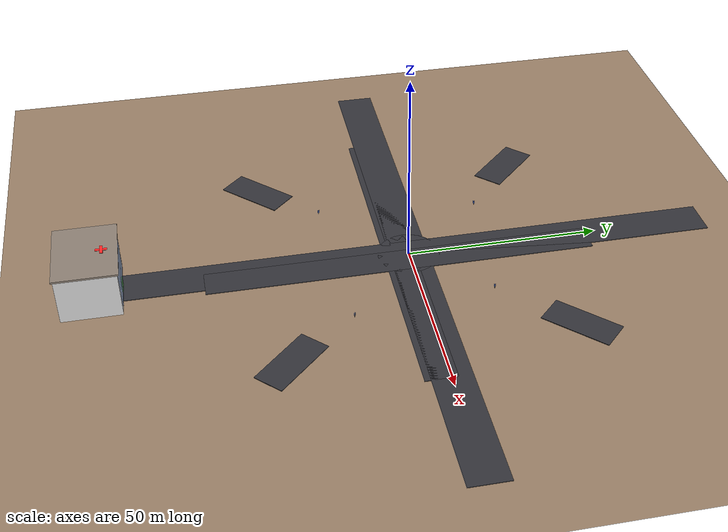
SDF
<sdf version="1.9">
 <world name="dodoma_light">
  <physics type="ode">
   <max_step_size>0.004</max_step_size>
   <real_time_factor>1.0</real_time_factor>
   <real_time_update_rate>250</real_time_update_rate>
   <gravity>0 0 -9.81</gravity>
  </physics>
  <plugin filename="gz-sim-sensors-system" name="gz::sim::systems::Sensors">
   <render_engine>ogre2</render_engine>
  </plugin>
  <plugin filename="gz-sim-imu-system" name="gz::sim::systems::Imu"/>
  <spherical_coordinates>
   <surface_model>EARTH_WGS84</surface_model>
   <world_frame_orientation>ENU</world_frame_orientation>
   <latitude_deg>-6.1629</latitude_deg>
   <longitude_deg>35.7516</longitude_deg>
   <elevation>1120</elevation>
   <heading_deg>0</heading_deg>
  </spherical_coordinates>
  <scene>
   <grid>false</grid>
   <sky><time>12.0</time><clouds><speed>3</speed><humidity>0.4</humidity></clouds></sky>
   <ambient>0.5 0.5 0.5 1</ambient>
   <background>0.45 0.55 0.75 1</background>
   <shadows>true</shadows>
  </scene>
  <light type="directional" name="sun">
   <pose>0 0 100 0 0 0</pose>
   <diffuse>1 0.95 0.9 1</diffuse>
   <direction>-0.3 0.1 -0.95</direction>
  </light>
  <model name="dodoma_ground">
   <static>true</static>
   <link name="ground">
    <collision name="collision">
     <geometry><plane><normal>0 0 1</normal><size>500 500</size></plane></geometry>
    </collision>
    <visual name="soil">
     <geometry><plane><normal>0 0 1</normal><size>500 500</size></plane></geometry>
     <material><ambient>0.55 0.45 0.35 1</ambient><diffuse>0.6 0.5 0.4 1</diffuse></material>
    </visual>
   </link>
  </model>
  <model name="india_road">
   <pose>0 0 0.12 0 0 0</pose>
   <static>true</static>
   <link name="road">
    <collision name="collision"><geometry><box><size>160 10 0.2</size></box></geometry></collision>
    <visual name="tarmac">
     <geometry><box><size>160 10 0.2</size></box></geometry>
     <material><ambient>0.18 0.18 0.2 1</ambient><diffuse>0.2 0.2 0.22 1</diffuse></material>
    </visual>
   </link>
  </model>
  <model name="uhuru_street">
   <pose>0 0 0.12 0 0 0</pose>
   <static>true</static>
   <link name="road">
    <collision name="collision"><geometry><box><size>10 160 0.2</size></box></geometry></collision>
    <visual name="tarmac">
     <geometry><box><size>10 160 0.2</size></box></geometry>
     <material><ambient>0.18 0.18 0.2 1</ambient><diffuse>0.2 0.2 0.22 1</diffuse></material>
    </visual>
   </link>
  </model>
  <model name="jamhuri_street">
   <pose>-2.5 -2.5 0.12 0 0 0</pose>
   <static>true</static>
   <link name="road">
    <collision name="collision"><geometry><box><size>100 8 0.2</size></box></geometry></collision>
    <visual name="tarmac">
     <geometry><box><size>100 8 0.2</size></box></geometry>
     <material><ambient>0.18 0.18 0.2 1</ambient><diffuse>0.2 0.2 0.22 1</diffuse></material>
    </visual>
   </link>
  </model>
  <model name="azikiwe_street">
   <pose>2.5 -2.5 0.12 0 0 0</pose>
   <static>true</static>
   <link name="road">
    <collision name="collision"><geometry><box><size>8 100 0.2</size></box></geometry></collision>
    <visual name="tarmac">
     <geometry><box><size>8 100 0.2</size></box></geometry>
     <material><ambient>0.18 0.18 0.2 1</ambient><diffuse>0.2 0.2 0.22 1</diffuse></material>
    </visual>
   </link>
  </model>
  <model name="connector_1">
   <pose>35 35 0.12 0 0 0.785</pose>
   <static>true</static>
   <link name="road">
    <collision name="collision"><geometry><box><size>18 8 0.2</size></box></geometry></collision>
    <visual name="tarmac">
     <geometry><box><size>18 8 0.2</size></box></geometry>
     <material><ambient>0.18 0.18 0.2 1</ambient><diffuse>0.2 0.2 0.22 1</diffuse></material>
    </visual>
   </link>
  </model>
  <model name="connector_2">
   <pose>-35 35 0.12 0 0 -0.785</pose>
   <static>true</static>
   <link name="road">
    <collision name="collision"><geometry><box><size>18 8 0.2</size></box></geometry></collision>
    <visual name="tarmac">
     <geometry><box><size>18 8 0.2</size></box></geometry>
     <material><ambient>0.18 0.18 0.2 1</ambient><diffuse>0.2 0.2 0.22 1</diffuse></material>
    </visual>
   </link>
  </model>
  <model name="connector_3">
   <pose>35 -35 0.12 0 0 -0.785</pose>
   <static>true</static>
   <link name="road">
    <collision name="collision"><geometry><box><size>18 8 0.2</size></box></geometry></collision>
    <visual name="tarmac">
     <geometry><box><size>18 8 0.2</size></box></geometry>
     <material><ambient>0.18 0.18 0.2 1</ambient><diffuse>0.2 0.2 0.22 1</diffuse></material>
    </visual>
   </link>
  </model>
  <model name="connector_4">
   <pose>-35 -35 0.12 0 0 0.785</pose>
   <static>true</static>
   <link name="road">
    <collision name="collision"><geometry><box><size>18 8 0.2</size></box></geometry></collision>
    <visual name="tarmac">
     <geometry><box><size>18 8 0.2</size></box></geometry>
     <material><ambient>0.18 0.18 0.2 1</ambient><diffuse>0.2 0.2 0.22 1</diffuse></material>
    </visual>
   </link>
  </model>
  <model name="central_roundabout">
   <pose>0 0 0.12 0 0 0</pose>
   <static>true</static>
   <link name="surface">
    <collision name="collision">
     <geometry><cylinder><radius>8</radius><length>0.2</length></cylinder></geometry>
    </collision>
    <visual name="tarmac">
     <geometry><cylinder><radius>8</radius><length>0.2</length></cylinder></geometry>
     <material><ambient>0.18 0.18 0.2 1</ambient><diffuse>0.2 0.2 0.22 1</diffuse></material>
    </visual>
   </link>
  </model>
  <model name="central_hospital">
   <pose>0 -80 0 0 0 0</pose>
   <static>true</static>
   <include><uri>hospital</uri></include>
  </model>
  <model name="person_1">
   <pose>18 18 0 0 0 0</pose>
   <static>true</static>
   <include><uri>person</uri></include>
  </model>
  <model name="person_2">
   <pose>22 -18 0 0 0 0</pose>
   <static>true</static>
   <include><uri>person</uri></include>
  </model>
  <model name="person_3">
   <pose>-18 22 0 0 0 0</pose>
   <static>true</static>
   <include><uri>person</uri></include>
  </model>
  <model name="person_4">
   <pose>-22 -20 0 0 0 0</pose>
   <static>true</static>
   <include><uri>person</uri></include>
  </model>
 </world>
</sdf>

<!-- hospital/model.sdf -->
<sdf version="1.9">
  <model name="hospital">
    <static>true</static>
    <link name="main">
      <collision name="col">
        <pose>0 0 6 0 0 0</pose>
        <geometry><box><size>20 15 12</size></box></geometry>
      </collision>
      <!-- Main building -->
      <visual name="walls">
        <pose>0 0 6 0 0 0</pose>
        <geometry><box><size>20 15 12</size></box></geometry>
        <material>
          <ambient>0.85 0.85 0.85 1</ambient>
          <diffuse>0.9 0.9 0.9 1</diffuse>
          <specular>0.1 0.1 0.1 1</specular>
        </material>
      </visual>
      <!-- Windows front row 1 -->
      <visual name="w_front_1">
        <pose>0 7.6 8 0 0 0</pose>
        <geometry><box><size>16 0.2 4</size></box></geometry>
        <material>
          <ambient>0.4 0.5 0.7 0.6</ambient>
          <diffuse>0.45 0.55 0.75 0.6</diffuse>
          <specular>0.3 0.3 0.3 1</specular>
        </material>
      </visual>
      <!-- Windows front row 2 -->
      <visual name="w_front_2">
        <pose>0 7.6 3 0 0 0</pose>
        <geometry><box><size>16 0.2 4</size></box></geometry>
        <material>
          <ambient>0.4 0.5 0.7 0.6</ambient>
          <diffuse>0.45 0.55 0.75 0.6</diffuse>
          <specular>0.3 0.3 0.3 1</specular>
        </material>
      </visual>
      <!-- Roof -->
      <visual name="roof">
        <pose>0 0 12.3 0 0 0</pose>
        <geometry><box><size>20.8 15.8 0.5</size></box></geometry>
        <material>
          <ambient>0.5 0.45 0.4 1</ambient>
          <diffuse>0.55 0.5 0.45 1</diffuse>
        </material>
      </visual>
      <!-- Red cross on roof -->
      <visual name="cross_h">
        <pose>0 4 12.8 0 0 0</pose>
        <geometry><box><size>3 0.8 0.1</size></box></geometry>
        <material>
          <ambient>0.9 0.1 0.1 1</ambient>
          <diffuse>1 0.15 0.15 1</diffuse>
          <emissive>0.3 0.05 0.05 1</emissive>
        </material>
      </visual>
      <visual name="cross_v">
        <pose>0 4 12.8 0 0 0</pose>
        <geometry><box><size>0.8 3 0.1</size></box></geometry>
        <material>
          <ambient>0.9 0.1 0.1 1</ambient>
          <diffuse>1 0.15 0.15 1</diffuse>
          <emissive>0.3 0.05 0.05 1</emissive>
        </material>
      </visual>
      <!-- Entrance -->
      <visual name="entrance">
        <pose>0 7.6 1.5 0 0 0</pose>
        <geometry><box><size>3 0.3 2.5</size></box></geometry>
        <material>
          <ambient>0.3 0.6 0.3 1</ambient>
          <diffuse>0.35 0.65 0.35 1</diffuse>
        </material>
      </visual>
    </link>
  </model>
</sdf>

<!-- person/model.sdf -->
<sdf version="1.9">
  <model name="person">
    <static>true</static>
    <!-- Body/torso -->
    <link name="torso">
      <visual name="body">
        <pose>0 0 0.85 0 0 0</pose>
        <geometry><cylinder><radius>0.2</radius><length>0.7</length></cylinder></geometry>
        <material>
          <ambient>0.2 0.3 0.6 1</ambient>
          <diffuse>0.25 0.35 0.65 1</diffuse>
        </material>
      </visual>
      <!-- Head -->
      <visual name="head">
        <pose>0 0 1.25 0 0 0</pose>
        <geometry><sphere><radius>0.15</radius></sphere></geometry>
        <material>
          <ambient>0.85 0.75 0.65 1</ambient>
          <diffuse>0.9 0.8 0.7 1</diffuse>
        </material>
      </visual>
      <!-- Left leg -->
      <visual name="leg_l">
        <pose>-0.08 0 0.4 0 0 0</pose>
        <geometry><cylinder><radius>0.06</radius><length>0.7</length></cylinder></geometry>
        <material>
          <ambient>0.15 0.15 0.15 1</ambient>
          <diffuse>0.2 0.2 0.2 1</diffuse>
        </material>
      </visual>
      <!-- Right leg -->
      <visual name="leg_r">
        <pose>0.08 0 0.4 0 0 0</pose>
        <geometry><cylinder><radius>0.06</radius><length>0.7</length></cylinder></geometry>
        <material>
          <ambient>0.15 0.15 0.15 1</ambient>
          <diffuse>0.2 0.2 0.2 1</diffuse>
        </material>
      </visual>
      <!-- Left arm -->
      <visual name="arm_l">
        <pose>-0.25 0 0.9 0 0 0.3</pose>
        <geometry><cylinder><radius>0.04</radius><length>0.5</length></cylinder></geometry>
        <material>
          <ambient>0.85 0.75 0.65 1</ambient>
          <diffuse>0.9 0.8 0.7 1</diffuse>
        </material>
      </visual>
      <!-- Right arm -->
      <visual name="arm_r">
        <pose>0.25 0 0.9 0 0 -0.3</pose>
        <geometry><cylinder><radius>0.04</radius><length>0.5</length></cylinder></geometry>
        <material>
          <ambient>0.85 0.75 0.65 1</ambient>
          <diffuse>0.9 0.8 0.7 1</diffuse>
        </material>
      </visual>
      <collision name="col">
        <pose>0 0 0.85 0 0 0</pose>
        <geometry><cylinder><radius>0.25</radius><length>1.5</length></cylinder></geometry>
      </collision>
    </link>
  </model>
</sdf>
